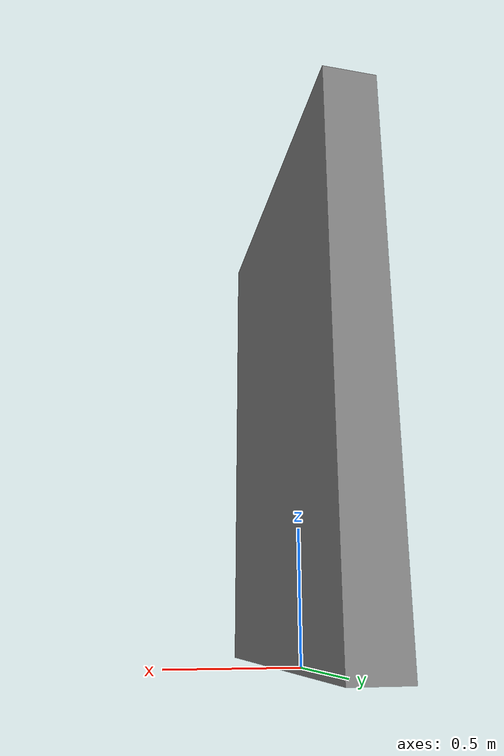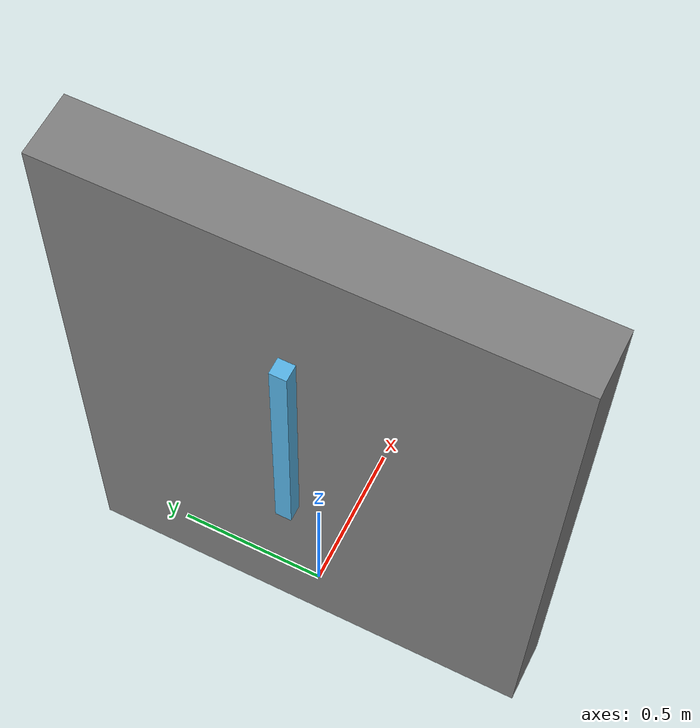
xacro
<?xml version="1.0"?>
<robot name="sarkofag"
       xmlns:sensor="http://playerstage.sourceforge.net/gazebo/xmlschema/#sensor"
       xmlns:controller="http://playerstage.sourceforge.net/gazebo/xmlschema/#controller"
       xmlns:xacro="http://ros.org/wiki/fixme"
       xmlns:interface="http://playerstage.sourceforge.net/gazebo/xmlschema/#interface">

  <link name="base_link">
    <inertial>
      <mass value="0" />
      <origin xyz="-0.0 0.0 0.0" />
      <inertia ixx="1.0" ixy="0.0" ixz="0.0"
               iyy="1.0" iyz="0.0"
               izz="1.0" />
    </inertial>

    <visual>
      <origin xyz="-0.0 0 1.0" rpy="0 0 0" />
      <geometry>
        <box size="0.20 1.5 2.0" />
      </geometry>

      <material name="Cyan">
        <color rgba="0.5 0.5 0.5 1.0"/>
      </material>

    </visual>

    <collision>
      <origin xyz="0 0 1.0" rpy="0 0 0" />
      <geometry>
        <box size="0.2 1.5 2.0" />
      </geometry>
    </collision>
  </link>

  <joint name="crank_joint" type="revolute">
    <origin rpy="0 0 0" xyz="-0.2 0 1.0"/>
    <limit lower="0.0" upper="3.14" effort="10.0" velocity="10.0" />
    <parent link="base_link"/>
    <child link="crank_link"/>
  </joint>

  <link name="crank_link">
    <inertial>
      <mass value="0.1"/>
      <origin xyz="0.0 0.0 0.0"/>
      <inertia ixx="0.1" ixy="0" ixz="0" iyy="0.1" iyz="0" izz="0.1"/>
    </inertial>

    <visual>
      <origin rpy="0 0 0.0" xyz="0 0 0.3"/>
      <geometry>
        <box size="0.05 0.05 0.8"/>
      </geometry>
    </visual>

    <collision>
      <origin rpy="0 0 0.0" xyz="0 0 0.3"/>
      <geometry>
        <box size="0.05 0.05 0.8"/>
      </geometry>
    </collision>

  </link>

</robot>
